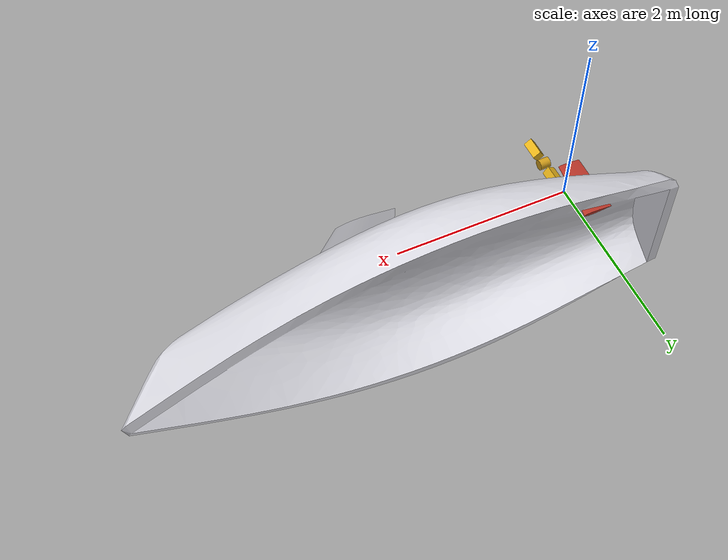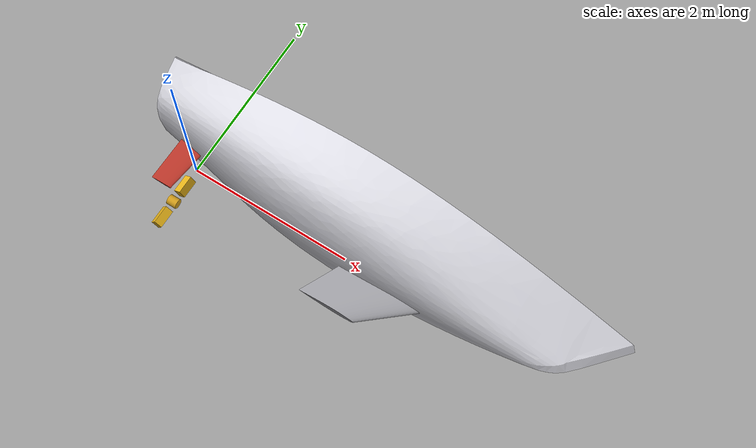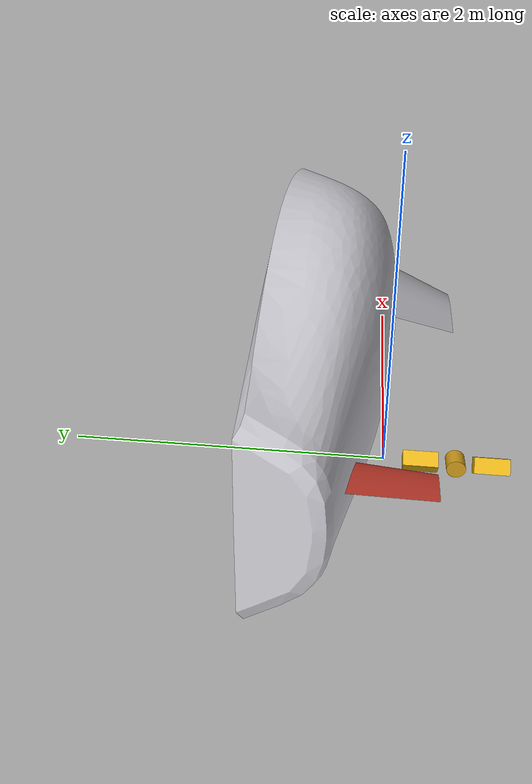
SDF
<?xml version="1.0" ?>
<sdf version="1.6">
  <world name="world">
    <model name="toy_boat">
      <pose>0 0 0 0 0 0</pose>

      <!-- ===================== HULL (base link) ====================== -->
      <link name="base_link">
        <pose>0 0 0 0 0 0</pose>
        <inertial>
          <pose>2.2206 0.3664 0 0 0 0</pose>
          <mass>1631.0</mass>
          <inertia>
            <ixx>789.0</ixx>  <ixy>0</ixy> <ixz>0</ixz>
            <iyy>5559.0</iyy> <iyz>0</iyz>
            <izz>5015.0</izz>
          </inertia>
        </inertial>
        <collision name="hull_collision">
          <pose>0 0 0 0 0 0</pose>
          <geometry><mesh><uri>../sdfs/DSYHS/OBJ/hull.obj</uri><scale>0.0026970 0.0026970 0.0026970</scale></mesh></geometry>
        </collision>
        <visual name="hull_visual">
          <pose>0 0 0 0 0 0</pose>
          <geometry><mesh><uri>../sdfs/DSYHS/OBJ/hull.obj</uri><scale>0.0026970 0.0026970 0.0026970</scale></mesh></geometry>
          <material><ambient>0.85 0.85 0.88 1</ambient><diffuse>0.85 0.85 0.88 1</diffuse></material>
        </visual>
      </link>

      <!-- ===================== KEEL (ballast) ======================== -->
      <link name="keel_link">
        <pose>0 0 0 0 0 0</pose>
        <inertial>
          <!-- 2000 kg at Y=-0.80: extreme keel for maximum righting moment.
               COM → Y≈-0.32, world Z≈-0.06 (0.46 m below waterline). -->
          <pose>1.5 -0.80 0 0 0 0</pose>
          <mass>315.0</mass>
          <inertia>
            <ixx>9.9</ixx>  <ixy>0</ixy> <ixz>0</ixz>
            <iyy>52.2</iyy>  <iyz>0</iyz>
            <izz>60.6</izz>
          </inertia>
        </inertial>
        <collision name="keel_collision">
          <pose>0 0 0 0 0 0</pose>
          <geometry><mesh><uri>../sdfs/DSYHS/OBJ/keel.obj</uri><scale>0.0026970 0.0026970 0.0026970</scale></mesh></geometry>
        </collision>
        <visual name="keel_visual">
          <pose>0 0 0 0 0 0</pose>
          <geometry><mesh><uri>../sdfs/DSYHS/OBJ/keel.obj</uri><scale>0.0026970 0.0026970 0.0026970</scale></mesh></geometry>
          <material><ambient>0.6 0.6 0.62 1</ambient><diffuse>0.6 0.6 0.62 1</diffuse></material>
        </visual>
      </link>

      <!-- ===================== RUDDER ================================ -->
      <link name="rudder_link">
        <pose>0 0 0 0 0 0</pose>
        <inertial>
          <pose>-0.2113 0.0233 0 0 0 0</pose>
          <mass>20.0</mass>
          <inertia>
            <ixx>0.86</ixx>  <ixy>0</ixy> <ixz>0</ixz>
            <iyy>0.20</iyy>  <iyz>0</iyz>
            <izz>1.06</izz>
          </inertia>
        </inertial>
        <collision name="rudder_collision">
          <pose>0 0 0 0 0 0</pose>
          <geometry><mesh><uri>../sdfs/DSYHS/OBJ/rudder.obj</uri><scale>0.0026970 0.0026970 0.0026970</scale></mesh></geometry>
        </collision>
        <visual name="rudder_visual">
          <pose>0 0 0 0 0 0</pose>
          <geometry><mesh><uri>../sdfs/DSYHS/OBJ/rudder.obj</uri><scale>0.0026970 0.0026970 0.0026970</scale></mesh></geometry>
          <material><ambient>0.7 0.2 0.15 1</ambient><diffuse>0.7 0.2 0.15 1</diffuse></material>
        </visual>
      </link>

      <!-- Rigid welds attaching keel + rudder to the hull -->
      <joint name="joint_keel" type="fixed">
        <parent>base_link</parent><child>keel_link</child><pose>0 0 0 0 0 0</pose>
      </joint>
      <joint name="joint_rudder" type="fixed">
        <parent>base_link</parent><child>rudder_link</child><pose>0 0 0 0 0 0</pose>
      </joint>

      <link name="propeller_hub">
        <pose>0.0 -0.45 0.0 0 0 0</pose>
        <inertial><pose>0 0 0 0 0 0</pose><mass>1.3572</mass>
          <inertia><ixx>0.002443</ixx><ixy>0</ixy><ixz>0</ixz><iyy>0.002851</iyy><iyz>0</iyz><izz>0.002851</izz></inertia></inertial>
        <collision name="propeller_hub_collision"><pose>0 0 0 0 1.5707963267948966 0</pose>
          <geometry><cylinder><radius>0.06</radius><length>0.12</length></cylinder></geometry></collision>
        <visual name="propeller_hub_visual"><pose>0 0 0 0 1.5707963267948966 0</pose>
          <geometry><cylinder><radius>0.06</radius><length>0.12</length></cylinder></geometry>
          <material><ambient>0.8 0.6 0.1 1</ambient><diffuse>0.8 0.6 0.1 1</diffuse><specular>0.4 0.4 0.4 1</specular></material></visual>
      </link>

      <!-- Blade 0: pointing -Y (down), pitched +0.6 about Y -->
      <link name="blade_0">
        <pose>0.0 -0.67 0.0 0 0.6 0</pose>
        <inertial><pose>0 0 0 0 0 0</pose><mass>0.20</mass>
          <inertia><ixx>0.000973</ixx><ixy>0</ixy><ixz>0</ixz><iyy>0.000333</iyy><iyz>0</iyz><izz>0.000973</izz></inertia></inertial>
        <collision name="blade_0_collision"><pose>0 0 0 0 0 0</pose>
          <geometry><box><size>0.10 0.22 0.10</size></box></geometry></collision>
        <visual name="blade_0_visual"><pose>0 0 0 0 0 0</pose>
          <geometry><box><size>0.10 0.22 0.10</size></box></geometry>
          <material><ambient>0.9 0.7 0.1 1</ambient><diffuse>0.9 0.7 0.1 1</diffuse><specular>0.4 0.4 0.4 1</specular></material></visual>
      </link>

      <!-- Blade 1: pointing +Y (up), pitched -0.6 about Y (opposite) -->
      <link name="blade_1">
        <pose>0.0 -0.23 0.0 0 -0.6 0</pose>
        <inertial><pose>0 0 0 0 0 0</pose><mass>0.20</mass>
          <inertia><ixx>0.000973</ixx><ixy>0</ixy><ixz>0</ixz><iyy>0.000333</iyy><iyz>0</iyz><izz>0.000973</izz></inertia></inertial>
        <collision name="blade_1_collision"><pose>0 0 0 0 0 0</pose>
          <geometry><box><size>0.10 0.22 0.10</size></box></geometry></collision>
        <visual name="blade_1_visual"><pose>0 0 0 0 0 0</pose>
          <geometry><box><size>0.10 0.22 0.10</size></box></geometry>
          <material><ambient>0.9 0.7 0.1 1</ambient><diffuse>0.9 0.7 0.1 1</diffuse><specular>0.4 0.4 0.4 1</specular></material></visual>
      </link>

      <joint name="joint_propeller" type="revolute">
        <parent>base_link</parent><child>propeller_hub</child><pose>0 0 0 0 0 0</pose>
        <axis><xyz>1 0 0</xyz><limit><lower>-1e16</lower><upper>1e16</upper></limit></axis>
      </joint>
      <joint name="joint_blade_0" type="fixed"><parent>propeller_hub</parent><child>blade_0</child><pose>0 0 0 0 0 0</pose></joint>
      <joint name="joint_blade_1" type="fixed"><parent>propeller_hub</parent><child>blade_1</child><pose>0 0 0 0 0 0</pose></joint>

    </model>
  </world>
</sdf>
